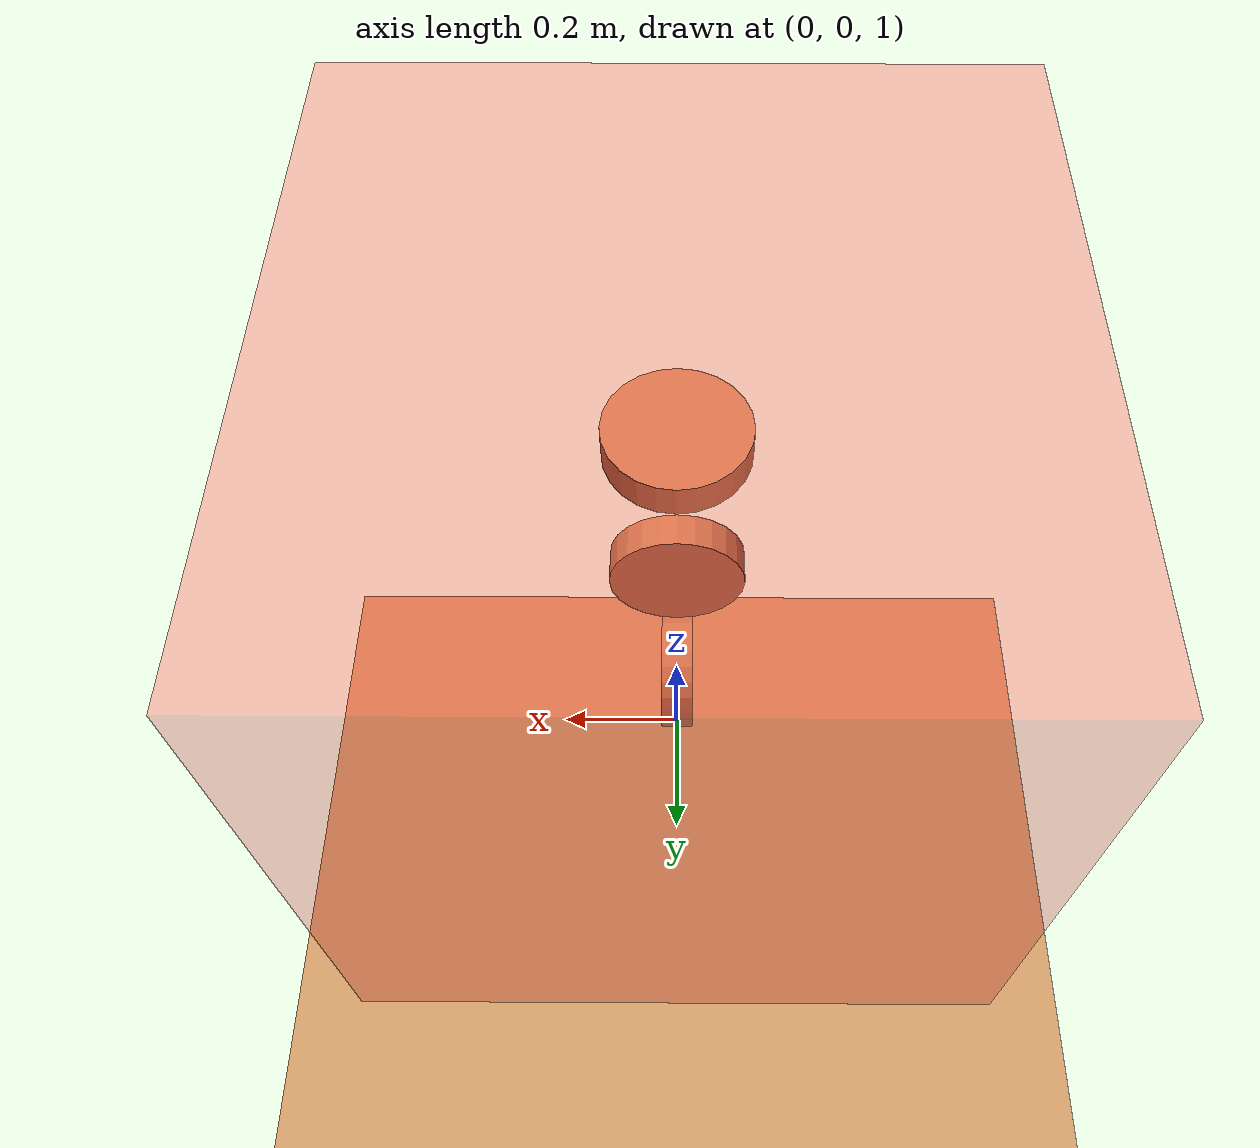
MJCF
<mujoco model='reactionwheel-v0.1'>
    <compiler angle='degree'/>

    <default class="main">
        <joint armature="1" damping="1" limited="false"/>
        <geom contype='1' conaffinity='1' condim='3' rgba='0.8 0.6 .4 1'
        	margin="0.001" solref=".02 1" solimp=".8 .8 .01" material="geom"/>
    </default>

    <option timestep='0.002' iterations="50" solver="PGS">
        <flag energy="enable" gravity='disable'/>
    </option>

    <visual>
        <map fogstart="3" fogend="5" force="0.1" znear="0.1"/>
        <quality shadowsize="2048"/>
        <global offwidth="800" offheight="800"/>
    </visual>

    <asset>
		<texture type="skybox" builtin="gradient" width="128" height="128" rgb1=".4 .6 .8"
            rgb2="0 0 0"/>
        <texture name="texgeom" type="cube" builtin="flat" mark="cross" width="127" height="1278"
            rgb1="0.8 0.6 0.4" rgb2="0.8 0.6 0.4" markrgb="1 1 1" random="0.01"/>
        <texture name="texplane" type="2d" builtin="checker" rgb1=".2 .3 .4" rgb2=".1 0.15 0.2"
            width="512" height="512"/>

        <material name='MatPlane' reflectance='0.5' texture="texplane" texrepeat="1 1" texuniform="true"/>
        <material name='geom' texture="texgeom" texuniform="true"/>
    </asset>

    <worldbody>
        <light directional='false' diffuse='.8 .8 .8' specular='0.3 0.3 0.3' pos='0 0 4.0' dir='0 -.15 -1'/>
		<geom name='floor' pos='0 0 0' size='1.5 3 .125' type='plane' material="MatPlane" condim='3'/>

        <body name='satellite' pos='0 0 1.5'>
			<geom name='obj' type='box' size='.5 .5 .5' rgba='1 0 0 0.25' mass='1'/>
            <joint name='sat_free' type='free' frictionloss='1'/>

            <body name='disk_roll' pos='0 0 0' euler='90 0 0'>
                <geom type='cylinder' size='0.1 0.025' mass='100'/>
                <joint name='rw_roll' axis='0 0 1' type='hinge' />
            </body>
            <body name='disk_pitch' pos='0 0 -0.3' euler='0 90 0'>
                <geom type='cylinder' size='0.1 0.025' mass='100'/>
                <joint name='rw_pitch' axis='0 0 1' type='hinge' />
            </body>
            <body name='disk_yaw' pos='0 0 0.3'>
                <geom type='cylinder' size='0.1 0.025' mass='100'/>
                <joint name='rw_yaw' axis='0 0 1' type='hinge' />
            </body>
        </body>

    </worldbody>

    <actuator>
        <motor name="a_roll" ctrllimited="true" ctrlrange="-1.0 1.0" joint="rw_roll" gear="150"/>
        <motor name="a_pitch" ctrllimited="true" ctrlrange="-1.0 1.0" joint="rw_pitch" gear="150"/>
        <motor name="a_yaw" ctrllimited="true" ctrlrange="-1.0 1.0" joint="rw_yaw" gear="150"/>
    </actuator>

</mujoco>
